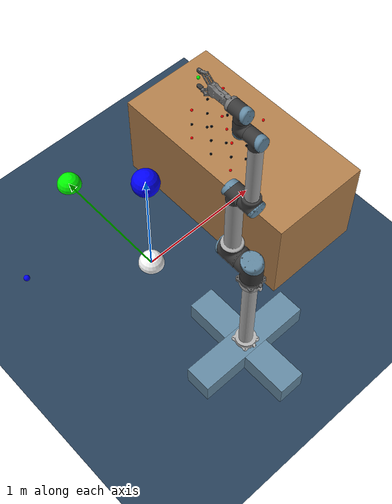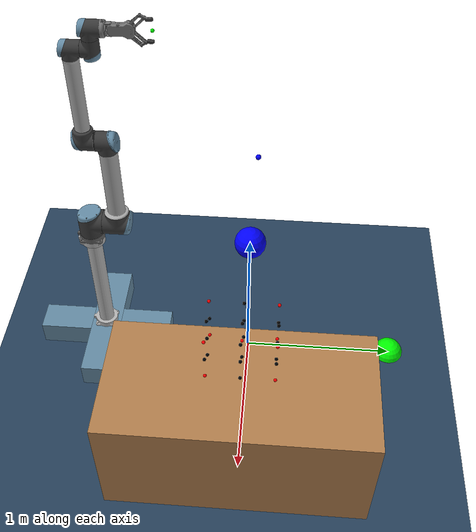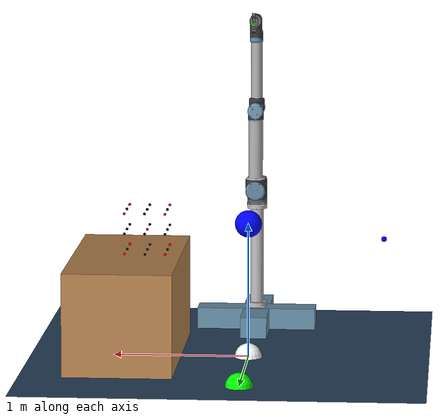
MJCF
<mujoco model="ur10_rg6">
  <compiler angle="radian"
            texturedir="textures/"
            meshdir="mesh/"/>

  <option  impratio="10" timestep="0.0002"/>

  <visual>
    <map znear="0.02" zfar="50"/>
  </visual>

  <default>
    <include file="ur10_rg6/ur10_rg6_default.xml"></include>
    <default class="env_body">
      <geom contype="1" conaffinity="1" condim="4" friction="1 0.05 0.0001" solimp=".99 .99 .001" solref="0.006 1"/>
    </default>

  </default>

  <asset>
    <texture name="wood:tex"   file='wood3.png' type='2d'/>
    <include file="ur10_rg6/ur10_rg6_asset.xml"></include>
    <texture name="sky:tex"     type="skybox"   builtin="gradient" width="100" height="100" rgb1="1 1 1" rgb2="0.3 0.3 0.8" />
    <texture name="floor:tex"   type="2d"        builtin="checker" rgb1=".2 .3 .4" rgb2=".1 .2 .3" width="100" height="100" />
    <material name='floor:mat'      texture="floor:tex"  shininess="0.8" texrepeat="10 10" specular="0.7"  reflectance="0" />
    <material name="wood:mat"   texture="wood:tex"  texrepeat="1 1"  shininess="0.9" specular="0.75" reflectance="0"/>
  </asset>

  <worldbody>
    <camera name="cam0" pos="0.0 1.1 1.6" quat="0.0 0.0 -0.216 -0.976" fovy="60.0"/>
    <camera name="cam1" pos="0.35 0.75 1.6" quat="0.690 0.153 0.153 0.690" fovy="60.0"/>
    <camera name="cam2" pos="-0.35 0.75 1.6" quat="0.690 0.153 -0.153 -0.690" fovy="60.0"/>
    <light name="light3" mode="targetbody" target="bench" directional="true" pos="1 1 3" castshadow='false'/>
    <geom name='floor' material="floor:mat" pos='0 0 0' size='2.5 2.5 0.1'  type='plane' />
    <geom type="box"  size="0.4 0.8 0.38"    pos="0.9 0 0.38" material="wood:mat" class="env_body" condim = "4"/>
    <include file="ur10_rg6/ur10_rg6_body.xml"></include>
    <body name='coordinate'>
      <site  pos='1 0 0' rgba='1 0 0 1' type='sphere' size='0.1'  ></site>
      <site  pos='0 1 0' rgba='0 1 0 1' type='sphere' size='0.1'  ></site>
      <site  pos='0 0 1' rgba='0 0 1 1' type='sphere' size='0.1'  ></site>
      <site  pos='0 0 0' rgba='1 1 1 1' type='sphere' size='0.1'  ></site>
      <site  pos='0.6  0 0.8' rgba='0 0 0 1' type='sphere' size='0.01'  ></site>
      <site  pos='0.75 0 0.8' rgba='0 0 0 1' type='sphere' size='0.01'  ></site>
      <site  pos='0.9  0 0.8' rgba='0 0 0 1' type='sphere' size='0.01'  ></site>
      <site  pos='0.6 0 0.95' rgba='0 0 0 1' type='sphere' size='0.01'  ></site>
      <site  pos='0.75 0 0.95' rgba='1 0 0 1' type='sphere' size='0.01'  ></site>
      <site  pos='0.9 0 0.95' rgba='0 0 0 1' type='sphere' size='0.01'  ></site>
      <site  pos='0.6 0 1.1' rgba='0 0 0 1' type='sphere' size='0.01'  ></site>
      <site  pos='0.75 0 1.1' rgba='0 0 0 1' type='sphere' size='0.01'  ></site>
      <site  pos='0.9 0 1.1' rgba='0 0 0 1' type='sphere' size='0.01'  ></site>

      <site  pos='0.6 0.2  0.8' rgba='1 0 0 1' type='sphere' size='0.01'  ></site>
      <site  pos='0.75 0.2  0.8' rgba='0 0 0 1' type='sphere' size='0.01'  ></site>
      <site  pos='0.9 0.2  0.8' rgba='1 0 0 1' type='sphere' size='0.01'  ></site>
      <site  pos='0.6 0.2  0.95' rgba='0 0 0 1' type='sphere' size='0.01'  ></site>
      <site  pos='0.75 0.2  0.95' rgba='0 0 0 1' type='sphere' size='0.01'  ></site>
      <site  pos='0.9 0.2 0.95' rgba='0 0 0 1' type='sphere' size='0.01'  ></site>
      <site  pos='0.6 0.2  1.1' rgba='1 0 0 1' type='sphere' size='0.01'  ></site>
      <site  pos='0.75 0.2  1.1' rgba='0 0 0 1' type='sphere' size='0.01'  ></site>
      <site  pos='0.9 0.2 1.1' rgba='1 0 0 1' type='sphere' size='0.01'  ></site>

      <site  pos='0.6 -0.2  0.8' rgba='1 0 0 1' type='sphere' size='0.01'  ></site>
      <site  pos='0.75 -0.2 0.8' rgba='0 0 0 1' type='sphere' size='0.01'  ></site>
      <site  pos='0.9 -0.2 0.8' rgba='1 0 0 1' type='sphere' size='0.01'  ></site>
      <site  pos='0.6 -0.2  0.95' rgba='0 0 0 1' type='sphere' size='0.01'  ></site>
      <site  pos='0.75 -0.2  0.95' rgba='0 0 0 1' type='sphere' size='0.01'  ></site>
      <site  pos='0.9 -0.2  0.95' rgba='0 0 0 1' type='sphere' size='0.01'  ></site>
      <site  pos='0.6 -0.2  1.1' rgba='1 0 0 1' type='sphere' size='0.01'  ></site>
      <site  pos='0.75 -0.2  1.1' rgba='0 0 0 1' type='sphere' size='0.01'  ></site>
      <site  pos='0.9 -0.2  1.1' rgba='1 0 0 1' type='sphere' size='0.01'  ></site>
    </body>

    <site name="target_site" pos="-1 0 0.9" size="0.02 0.02 0.02" rgba="0 0 1 1" type="sphere"></site>

  </worldbody>
  <include file="ur10_rg6/ur10_rg6_others.xml"></include>

</mujoco>

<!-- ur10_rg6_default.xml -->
<mujoco>
    <default class="ur10:arm">
        <geom contype='1' conaffinity='1' condim='4' rgba="0 0 0 0"/>
        <joint damping='100'/>
    </default>
    <default class="ur10:wrist">
        <geom contype='1' conaffinity='1' condim='4' rgba="0 0 0 0"/>
        <joint damping='75'/>
    </default>
    <default class="ur10:visual">
        <geom contype='0' conaffinity='0' density="0"/>
    </default>

    <default class="ur10:equality_constraint">
        <equality solimp="0.99 0.995 0.001" solref="0.006 1"/>
    </default>

    <default class="rg6:joint">
        <joint limited="true" damping="2" frictionloss="0.1"/>
    </default>

    <default class="rg6:contact">
        <geom contype="1" conaffinity="1" rgba="0.46 0.46 0.46 0" condim="4" friction="1 0.05 0.0001" solimp=".99 .99 .001" solref="0.001 1"/>
    </default>

    <default class="rg6:visual">
        <geom contype="0" conaffinity="0" type="mesh" rgba="0.4643137 0.4643137 0.4643137 1" mass="0.001"/>
        <default class="rg6:visual_2">
            <geom rgba="0.2227451 0.2227451 0.2227451 1"/>
        </default>
    </default>

    <default class="rg6:equality_constraint">
        <equality solimp="0.999 0.999 0.001" solref="0.01 1"/>
    </default>
</mujoco>

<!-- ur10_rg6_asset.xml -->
<mujoco>
    <mesh name="ur10:base"           file="ur10_collision/base.stl"     />
    <mesh name="ur10:shoulder"       file="ur10_collision/shoulder.stl" />
    <mesh name="ur10:upperarm"       file="ur10_collision/upperarm.stl" />
    <mesh name="ur10:forearm"        file="ur10_collision/forearm.stl"  />
    <mesh name="ur10:wrist1"         file="ur10_collision/wrist1.stl"   />
    <mesh name="ur10:wrist2"         file="ur10_collision/wrist2.stl"   />
    <mesh name="ur10:wrist3"         file="ur10_collision/wrist3.stl"   />

    <mesh name="ur10:base_v0"           file="ur10_visual/base/base_0.stl"     />
    <mesh name="ur10:shoulder_v0"       file="ur10_visual/shoulder/shoulder_0.stl" />
    <mesh name="ur10:shoulder_v1"       file="ur10_visual/shoulder/shoulder_1.stl" />
    <mesh name="ur10:shoulder_v2"       file="ur10_visual/shoulder/shoulder_2.stl" />
    <mesh name="ur10:upperarm_v0"       file="ur10_visual/upperarm/upperarm_0.stl" />
    <mesh name="ur10:upperarm_v1"       file="ur10_visual/upperarm/upperarm_1.stl" />
    <mesh name="ur10:upperarm_v2"       file="ur10_visual/upperarm/upperarm_2.stl" />
    <mesh name="ur10:upperarm_v3"       file="ur10_visual/upperarm/upperarm_3.stl" />
    <mesh name="ur10:forearm_v0"        file="ur10_visual/forearm/forearm_0.stl"  />
    <mesh name="ur10:forearm_v1"        file="ur10_visual/forearm/forearm_1.stl"  />
    <mesh name="ur10:forearm_v2"        file="ur10_visual/forearm/forearm_2.stl"  />
    <mesh name="ur10:forearm_v3"        file="ur10_visual/forearm/forearm_3.stl"  />
    <mesh name="ur10:forearm_v4"        file="ur10_visual/forearm/forearm_4.stl"  />
    <mesh name="ur10:wrist1_v0"         file="ur10_visual/wrist1/wrist1_0.stl"   />
    <mesh name="ur10:wrist1_v1"         file="ur10_visual/wrist1/wrist1_1.stl"   />
    <mesh name="ur10:wrist1_v2"         file="ur10_visual/wrist1/wrist1_2.stl"   />
    <mesh name="ur10:wrist2_v0"         file="ur10_visual/wrist2/wrist2_0.stl"   />
    <mesh name="ur10:wrist2_v1"         file="ur10_visual/wrist2/wrist2_1.stl"   />
    <mesh name="ur10:wrist2_v2"         file="ur10_visual/wrist2/wrist2_2.stl"   />
    <mesh name="ur10:wrist3_v0"         file="ur10_visual/wrist3/wrist3_0.stl"   />

    <mesh file="rg6_gripper/Part011.stl" name="Part011"/>
    <mesh file="rg6_gripper/Part008.stl" name="Part008"/>
    <mesh file="rg6_gripper/Part024.stl" name="Part024"/>
    <mesh file="rg6_gripper/Part004.stl" name="Part004"/>
    <mesh file="rg6_gripper/Part023.stl" name="Part023"/>
    <mesh file="rg6_gripper/Part000.stl" name="Part000"/>
    <mesh file="rg6_gripper/Part021.stl" name="Part021"/>
    <mesh file="rg6_gripper/Part003.stl" name="Part003"/>
    <mesh file="rg6_gripper/Part009.stl" name="Part009"/>
    <mesh file="rg6_gripper/Part017.stl" name="Part017"/>
    <mesh file="rg6_gripper/Part010.stl" name="Part010"/>
    <mesh file="rg6_gripper/Part020.stl" name="Part020"/>
    <mesh file="rg6_gripper/Part025.stl" name="Part025"/>
    <mesh file="rg6_gripper/Part012.stl" name="Part012"/>
    <mesh file="rg6_gripper/Part018.stl" name="Part018"/>
    <mesh file="rg6_gripper/Part014.stl" name="Part014"/>
    <mesh file="rg6_gripper/Part019.stl" name="Part019"/>
    <mesh file="rg6_gripper/Part027.stl" name="Part027"/>
    <mesh file="rg6_gripper/Part005.stl" name="Part005"/>
    <mesh file="rg6_gripper/Part026.stl" name="Part026"/>
    <mesh file="rg6_gripper/Part015.stl" name="Part015"/>
    <mesh file="rg6_gripper/Part016.stl" name="Part016"/>
    <mesh file="rg6_gripper/Part022.stl" name="Part022"/>
    <mesh file="rg6_gripper/Part028.stl" name="Part028"/>
    <mesh file="rg6_gripper/Part007.stl" name="Part007"/>
    <mesh file="rg6_gripper/Part013.stl" name="Part013"/>
    <mesh file="rg6_gripper/Part006.stl" name="Part006"/>
    <mesh file="rg6_gripper/rg6_single_bracket.stl" name="rg6_single_bracket"/>

    <texture name="ur10:tex"     type="2d"       builtin="flat" height="32" width="32" rgb1="0.45 0.45 0.45" />
    <texture name="metal"        type="cube"     file="metal2.png"/>
    <material name="bench:mat"      texture="metal"   shininess="0.1" specular="0.5" reflectance="0.2"/>

</mujoco>

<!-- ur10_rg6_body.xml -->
<mujoco>
    <body name="bench" pos="0.0 -1.0 0.115" >

        <geom type="box" pos="0 0 -0.015" size="0.45 0.1 0.08" rgba="0.3921569 0.5427451 0.64 1"/>
        <geom type="box" pos="0 0.275 -0.015" size="0.1 0.175 0.08" rgba="0.3921569 0.5427451 0.64 1"/>
        <geom type="box" pos="0 -0.275 -0.015" size="0.1 0.175 0.08" rgba="0.3921569 0.5427451 0.64 1"/>
        <geom type="mesh" mesh="ur10:base_v0" pos="0 0 0.065" rgba="0.7 0.7 0.7 1"/>
        <geom type="cylinder" pos="0 0 0.5425" size="0.05 0.4575" rgba="0.7 0.7 0.7 1"/>
        <geom type="mesh" mesh="ur10:base_v0" pos="0 0 0.87" quat="0 0 1 0" rgba="0.7 0.7 0.7 1"/>
        <body name="ur10:base_link" pos="0 0 0.87" childclass="ur10:arm">
            <geom type="mesh"  mesh="ur10:base"/>
            <geom type="mesh"  mesh="ur10:base_v0" class="ur10:visual" rgba="0.371451 0.371451 0.371451 1"/>
            <body name="ur10:shoulder_link" pos="0 0 0.1273">
                <joint name="ur10:shoulder_pan" pos="0 0 0" axis="0 0 1" limited="true" range="-6.283185307179586 6.283185307179586"/>
                <geom type="mesh"  mesh="ur10:shoulder"/>
                <geom type="mesh"  mesh="ur10:shoulder_v0" class="ur10:visual" rgba="0.2227451 0.2227451 0.2227451 1"/>
                <geom type="mesh"  mesh="ur10:shoulder_v1" class="ur10:visual" rgba="0.3921569 0.5427451 0.64 1"/>
                <geom type="mesh"  mesh="ur10:shoulder_v2" class="ur10:visual" rgba="0.4643137 0.4643137 0.4643137 1"/>
                <body name="ur10:upper_arm_link" pos="0 0.220941 0">
                    <joint name="ur10:shoulder_lift" pos="0 0 0" axis="0 1 0" limited="true" range="-6.283185307179586 6.283185307179586" ref="-1.5707963267948966"/>
                    <geom type="mesh"  mesh="ur10:upperarm"/>
                    <geom type="mesh"  mesh="ur10:upperarm_v0" class="ur10:visual" rgba="0.2227451 0.2227451 0.2227451 1"/>
                    <geom type="mesh"  mesh="ur10:upperarm_v1" class="ur10:visual" rgba="0.3921569 0.5427451 0.64 1"/>
                    <geom type="mesh"  mesh="ur10:upperarm_v2" class="ur10:visual" rgba="0.4643137 0.4643137 0.4643137 1"/>
                    <geom type="mesh"  mesh="ur10:upperarm_v3" class="ur10:visual" rgba="0.6563138 0.6563138 0.6563138 1"/>
                    <body name="ur10:forearm_link" pos="0 -0.1719 0.612">
                        <joint name="ur10:elbow" pos="0 0 0" axis="0 1 0" limited="true" range="-6.2831852 6.2831852" />
                        <geom type="mesh"  mesh="ur10:forearm"/>
                        <geom type="mesh"  mesh="ur10:forearm_v0" class="ur10:visual" rgba="0.2227451 0.2227451 0.2227451 1"/>
                        <geom type="mesh"  mesh="ur10:forearm_v1" class="ur10:visual" rgba="0.3921569 0.5427451 0.64 1"/>
                        <geom type="mesh"  mesh="ur10:forearm_v2" class="ur10:visual" rgba="0.4643137 0.4643137 0.4643137 1"/>
                        <geom type="mesh"  mesh="ur10:forearm_v3" class="ur10:visual" rgba="0.6563138 0.6563138 0.6563138 1"/>
                        <geom type="mesh"  mesh="ur10:forearm_v4" class="ur10:visual" rgba="0.08031373 0.08031373 0.08031373 1"/>
                        <body name="ur10:wrist_1_link" pos="0 0 0.5723" childclass="ur10:wrist">
                            <joint name="ur10:wrist_1" pos="0 0 0" axis="0 1 0" limited="true" range="-6.283185307179586 6.283185307179586" ref="-1.5707963267948966" />
                            <geom type="mesh" mesh="ur10:wrist1"/>
                            <geom type="mesh" mesh="ur10:wrist1_v0" class="ur10:visual" rgba="0.2227451 0.2227451 0.2227451 1"/>
                            <geom type="mesh" mesh="ur10:wrist1_v1" class="ur10:visual" rgba="0.3921569 0.5427451 0.64 1"/>
                            <geom type="mesh" mesh="ur10:wrist1_v2" class="ur10:visual" rgba="0.4643137 0.4643137 0.4643137 1"/>
                            <body name="ur10:wrist_2_link" pos="0 0.1149 0">
                                <joint name="ur10:wrist_2" pos="0 0 0" axis="0 0 1" limited="true" range="-6.2831852 6.2831852" />
                                <geom type="mesh"  mesh="ur10:wrist2"/>
                                <geom type="mesh"  mesh="ur10:wrist2_v0" class="ur10:visual" rgba="0.2227451 0.2227451 0.2227451 1"/>
                                <geom type="mesh"  mesh="ur10:wrist2_v1" class="ur10:visual" rgba="0.3921569 0.5427451 0.64 1"/>
                                <geom type="mesh"  mesh="ur10:wrist2_v2" class="ur10:visual" rgba="0.4643137 0.4643137 0.4643137 1"/>
                                <body name="ur10:wrist_3_link" pos="0 0 0.1157">
                                    <joint name="ur10:wrist_3" pos="0 0 0" axis="0 1 0" limited="true" range="-6.283185307179586 6.283185307179586" ref="-1.5707963267948966" />
                                    <geom type="mesh"  mesh="ur10:wrist3"/>
                                    <geom type="mesh"  mesh="ur10:wrist3_v0" class="ur10:visual" rgba="0.4643137 0.4643137 0.4643137 1"/>
                                    <body name="ur10:ee_link" pos="0 0.0922 0" quat="0.707107 -0.707107 0 0">
                                        <body name='gripper:target' pos="0.0 0.0 0.23" >
                                             <site  type='sphere' size=".01" rgba="0 1 0 1"/>
                                        </body>

                                        <geom size="0.005 0.005 0.005" pos="-0.01 0 0" type="box" />
                                        <body name='rg6_base' pos='0.01 0 0.047' quat="-0.5 0.5 -0.5 0.5">
                                            <geom mesh="rg6_single_bracket" name="rg6_single_bracket" pos="0 0.049 -0.01" quat="0 1 0 0" class="rg6:visual"/>
                                            <geom mesh="Part000" name="rg6_center_0" type="mesh" class="rg6:visual"/>
                                            <geom mesh="Part005" name="rg6_center_1" type="mesh" class="rg6:visual"/>
                                            <body name="rg6:body_link">
                                                 <geom type="box" size="0.03 0.065 0.02" pos="0 -0.025 -0.01" class="rg6:contact"/>
                                            </body>

                                            <body name="rg6:right_in_link">
                                                <joint name="rg6:right_in_up_joint" type="hinge" axis="0 0 1" pos="0.0105 -0.089 0" limited="true" range="-0.75 0.75" class="rg6:joint"/>
                                                <geom mesh="Part011" name="rg6:right_in" type="mesh" class="rg6:visual"/>
                                                <body name="rg6:right_link">
                                                    <geom  type="box" pos="0.045 -0.11 -0.01" size="0.045 0.015 0.016" quat="0.9239 0 0 -0.3827" class="rg6:contact"/>
                                                </body>

                                                <body name="rg6:right_middle_link">
                                                    <joint name="rg6:right_in_down_joint" type="hinge" axis="0 0 1" pos="0.0655 -0.147 0" limited="true" range="-0.75 0.75" class="rg6:joint"/>

                                                    <geom mesh="Part016" name="rg6:right_middle" type="mesh" class="rg6:visual" />
                                                    <geom mesh="Part020" name="rg6:right_fingertip" type="mesh" class="rg6:visual_2" />
                                                    <geom type="box" pos="0.061 -0.168 -0.012" size="0.0065 0.020 0.01" class="rg6:contact" />
                                                </body>
                                            </body>

                                            <body name="rg6:right_out_link">
                                                <joint name="rg6:right_out_up_joint" type="hinge" axis="0 0 1" pos="0.0235 -0.0665 0" limited="true" range="-0.75 0.75" class="rg6:joint"/>
                                                <geom mesh="Part015" name="rg6:right_out" type="mesh" class="rg6:visual"/>
                                            </body>

                                            <body name="rg6:left_in_link">
                                                <joint name="rg6:left_in_up_joint" type="hinge" axis="0 0 1" pos="-0.0105 -0.089 0" limited="true" range="-0.75 0.75" class="rg6:joint"/>
                                                <geom mesh="Part019" name="rg6:left_in" type="mesh" class="rg6:visual"/>
                                                <body name="rg6:left_link" >
                                                    <geom type="box" pos="-0.045 -0.11 -0.01" size="0.045 0.015 0.016" quat="0.9239 0 0 0.3827" class="rg6:contact"/>
                                                </body>

                                                <body name="rg6:left_middle_link">
                                                    <joint name="rg6:left_in_down_joint" type="hinge" axis="0 0 1" pos="-0.0655 -0.147 0" limited="true" range="-0.75 0.75" class="rg6:joint"/>
                                                    <geom mesh="Part003" name="rg6:left_middle" type="mesh" class="rg6:visual" />
                                                    <geom mesh="Part004" name="rg6:left_fingertip" type="mesh" class="rg6:visual_2" />
                                                    <geom type="box" pos="-0.061 -0.168 -0.012" size="0.0065 0.020 0.01" class="rg6:contact"/>
                                                    <site name="left_gripper_site" type="sphere" pos="-0.0545 -0.168 -0.012" size=".002 .002 .002"/>
                                                </body>
                                            </body>

                                            <body name="rg6:left_out_link">
                                                <joint name="rg6:left_out_up_joint" type="hinge" axis="0 0 1" pos="-0.0235 -0.0665 0" limited="true" range="-0.75 0.75" class="rg6:joint"/>
                                                <geom mesh="Part008" name="rg6:left_out" type="mesh" class="rg6:visual"/>
                                            </body>

                                        </body>

                                    </body>
                                </body>
                            </body>
                        </body>
                    </body>
                </body>
            </body>
        </body>
    </body>
</mujoco>

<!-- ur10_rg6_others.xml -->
<mujoco>
    <equality>
        <joint name="ur10:shoulder_pan_fix" active="false" joint1="ur10:shoulder_pan" class="ur10:equality_constraint"/>
        <joint name="ur10:shoulder_lift_fix" active="false" joint1="ur10:shoulder_lift" class="ur10:equality_constraint"/>
        <joint name="ur10:elbow_fix" active="false" joint1="ur10:elbow" class="ur10:equality_constraint"/>
        <joint name="ur10:wrist_1_fix" active="false" joint1="ur10:wrist_1" class="ur10:equality_constraint"/>
        <joint name="ur10:wrist_2_fix" active="false" joint1="ur10:wrist_2" class="ur10:equality_constraint"/>
        <joint name="ur10:wrist_3_fix" active="false" joint1="ur10:wrist_3" class="ur10:equality_constraint"/>

        <joint name="rg6:left_con0_fix" active="true" joint1="rg6:left_out_up_joint" joint2="rg6:right_in_up_joint" polycoef="0 -1 0 0 0" class="rg6:equality_constraint"/>
        <joint name="rg6:left_con1_fix" active="true" joint1="rg6:right_in_up_joint" joint2="rg6:left_in_down_joint" class="rg6:equality_constraint"/>

        <joint name="rg6:right_con0_fix" active="true" joint1="rg6:right_out_up_joint" joint2="rg6:right_in_up_joint" class="rg6:equality_constraint"/>
        <joint name="rg6:right_con1_fix" active="true" joint1="rg6:right_in_up_joint" joint2="rg6:right_in_down_joint" polycoef="0 -1 0 0 0" class="rg6:equality_constraint"/>

         <joint name="rg6:right_left_con_fix" active="true" joint1="rg6:right_in_up_joint" joint2="rg6:left_in_up_joint" polycoef="0 -1 0 0 0" class="rg6:equality_constraint"/>

    </equality>

    <actuator>
        <position name='ur10:AP_shoulder_pan' ctrllimited="true" ctrlrange="-6.2831852 6.2831852" joint='ur10:shoulder_pan' kp="250000"/>
        <position name='ur10:AP_shoulder_lift' ctrllimited="true" ctrlrange="-6.2831852 6.2831852" joint='ur10:shoulder_lift' kp="50000"/>
        <position name='ur10:AP_elbow' ctrllimited="true" ctrlrange="-6.2831852 6.2831852" joint='ur10:elbow' kp="50000"/>
        <position name='ur10:AP_wrist_1' ctrllimited="true" ctrlrange="-6.2831852 6.2831852" joint='ur10:wrist_1' kp="10000"/>
        <position name='ur10:AP_wrist_2' ctrllimited="true" ctrlrange="-6.2831852 6.2831852" joint='ur10:wrist_2' kp="10000"/>
        <position name='ur10:AP_wrist_3' ctrllimited="true" ctrlrange="-6.2831852 6.2831852" joint='ur10:wrist_3' kp="10000"/>
        <position name="rg6:AP_right_in_up_joint" ctrllimited="true" ctrlrange="-0.75 0.48" joint='rg6:right_in_up_joint' kp="40"/>
    </actuator>

    <contact>
        <exclude  body1="rg6:body_link" body2="rg6:left_link" />
        <exclude  body1="rg6:body_link" body2="rg6:right_link" />
        <exclude  body1="rg6:left_link" body2="rg6:right_link" />
    </contact>

</mujoco>
